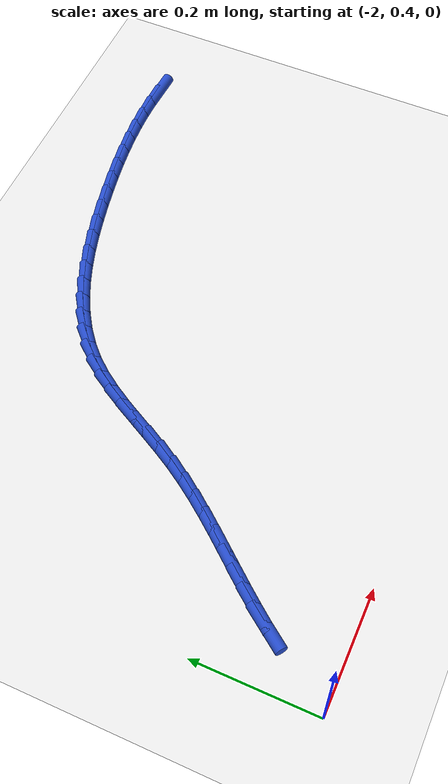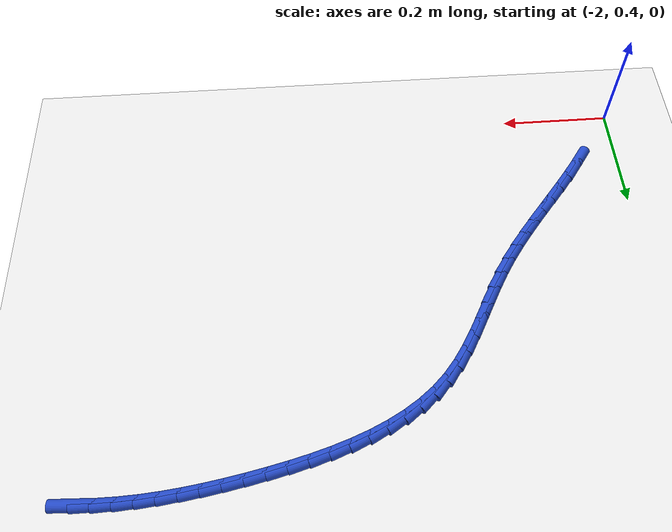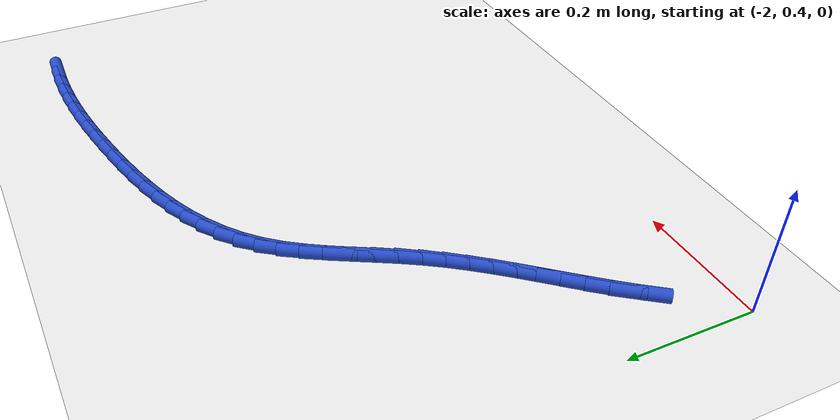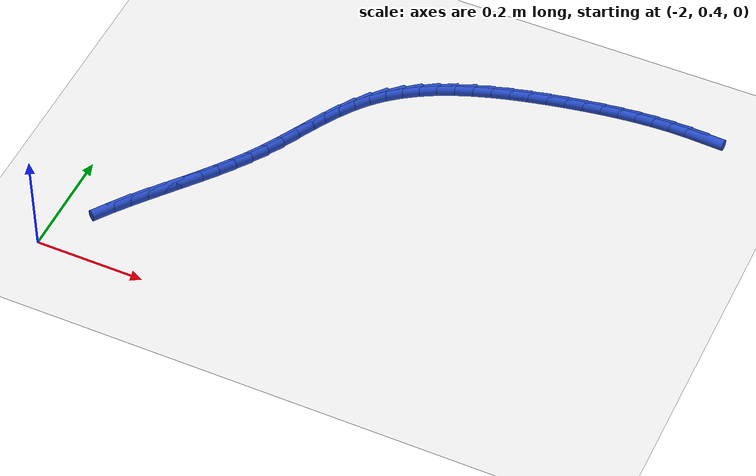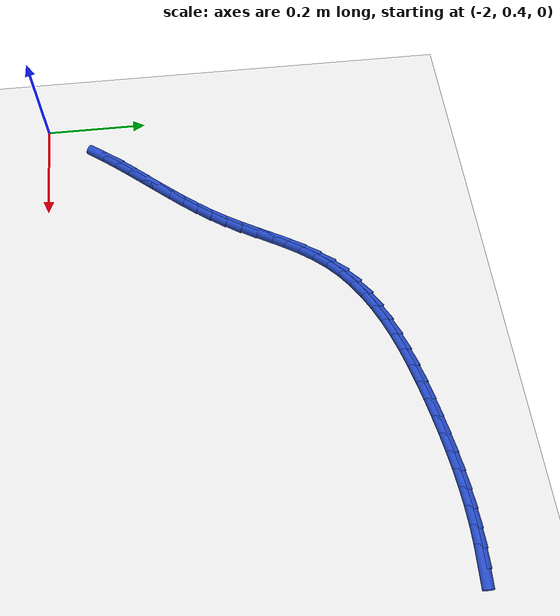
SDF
<sdf version="1.6">
 <world name="default">
  <model name="ground_plane">
   <static>1</static>
   <link name="link">
    <collision name="collision">
     <geometry><plane><normal>0 0 1</normal><size>100 100</size></plane></geometry>
     <surface><friction><ode><mu>100</mu><mu2>50</mu2></ode></friction></surface>
    </collision>
    <visual name="visual">
     <cast_shadows>0</cast_shadows>
     <geometry><plane><normal>0 0 1</normal><size>100 100</size></plane></geometry>
     <material>
      <script><uri>file://media/materials/scripts/gazebo.material</uri><name>Gazebo/WhiteGlow</name></script>
     </material>
    </visual>
   </link>
  </model>
  <model name="line">
   <link name="link_52">
    <pose>-1.0533404211157429 1.0933298246911303 0.01 0 1.57 -0.04409792855692649</pose>
    <collision name="collision">
     <geometry><cylinder><radius>0.01</radius><length>0.08</length></cylinder></geometry>
    </collision>
    <visual name="visual">
     <material>
      <script><name>Gazebo/Blue</name><uri>file://media/materials/scripts/gazebo.material</uri></script>
     </material>
     <geometry><cylinder><radius>0.01</radius><length>0.08</length></cylinder></geometry>
    </visual>
   </link>
   <link name="link_53">
    <pose>-1.0844659059388662 1.0947032845017493 0.01 0 1.57 -0.0008967322215749287</pose>
    <collision name="collision">
     <geometry><cylinder><radius>0.01</radius><length>0.08</length></cylinder></geometry>
    </collision>
    <visual name="visual">
     <material>
      <script><name>Gazebo/Blue</name><uri>file://media/materials/scripts/gazebo.material</uri></script>
     </material>
     <geometry><cylinder><radius>0.01</radius><length>0.08</length></cylinder></geometry>
    </visual>
   </link>
   <link name="link_54">
    <pose>-1.1156723066244603 1.0947312682942643 0.01 0 1.57 0.038955161904047395</pose>
    <collision name="collision">
     <geometry><cylinder><radius>0.01</radius><length>0.08</length></cylinder></geometry>
    </collision>
    <visual name="visual">
     <material>
      <script><name>Gazebo/Blue</name><uri>file://media/materials/scripts/gazebo.material</uri></script>
     </material>
     <geometry><cylinder><radius>0.01</radius><length>0.08</length></cylinder></geometry>
    </visual>
   </link>
   <link name="link_55">
    <pose>-1.1469783988741316 1.0935111171446366 0.01 0 1.57 0.07530611318332632</pose>
    <collision name="collision">
     <geometry><cylinder><radius>0.01</radius><length>0.08</length></cylinder></geometry>
    </collision>
    <visual name="visual">
     <material>
      <script><name>Gazebo/Blue</name><uri>file://media/materials/scripts/gazebo.material</uri></script>
     </material>
     <geometry><cylinder><radius>0.01</radius><length>0.08</length></cylinder></geometry>
    </visual>
   </link>
   <link name="link_56">
    <pose>-1.1784029583894877 1.0911401721288292 0.01 0 1.57 0.10807541034129929</pose>
    <collision name="collision">
     <geometry><cylinder><radius>0.01</radius><length>0.08</length></cylinder></geometry>
    </collision>
    <visual name="visual">
     <material>
      <script><name>Gazebo/Blue</name><uri>file://media/materials/scripts/gazebo.material</uri></script>
     </material>
     <geometry><cylinder><radius>0.01</radius><length>0.08</length></cylinder></geometry>
    </visual>
   </link>
   <link name="link_57">
    <pose>-1.209964760872134 1.087715774322804 0.01 0 1.57 0.13724059520402282</pose>
    <collision name="collision">
     <geometry><cylinder><radius>0.01</radius><length>0.08</length></cylinder></geometry>
    </collision>
    <visual name="visual">
     <material>
      <script><name>Gazebo/Blue</name><uri>file://media/materials/scripts/gazebo.material</uri></script>
     </material>
     <geometry><cylinder><radius>0.01</radius><length>0.08</length></cylinder></geometry>
    </visual>
   </link>
   <link name="link_58">
    <pose>-1.2416825820236777 1.0833352648025236 0.01 0 1.57 0.16282443819244294</pose>
    <collision name="collision">
     <geometry><cylinder><radius>0.01</radius><length>0.08</length></cylinder></geometry>
    </collision>
    <visual name="visual">
     <material>
      <script><name>Gazebo/Blue</name><uri>file://media/materials/scripts/gazebo.material</uri></script>
     </material>
     <geometry><cylinder><radius>0.01</radius><length>0.08</length></cylinder></geometry>
    </visual>
   </link>
   <link name="link_59">
    <pose>-1.2735751975457257 1.0780959846439502 0.01 0 1.57 0.18488274483353775</pose>
    <collision name="collision">
     <geometry><cylinder><radius>0.01</radius><length>0.08</length></cylinder></geometry>
    </collision>
    <visual name="visual">
     <material>
      <script><name>Gazebo/Blue</name><uri>file://media/materials/scripts/gazebo.material</uri></script>
     </material>
     <geometry><cylinder><radius>0.01</radius><length>0.08</length></cylinder></geometry>
    </visual>
   </link>
   <link name="link_60">
    <pose>-1.3056613831398851 1.0720952749230457 0.01 0 1.57 0.20367643807089145</pose>
    <collision name="collision">
     <geometry><cylinder><radius>0.01</radius><length>0.08</length></cylinder></geometry>
    </collision>
    <visual name="visual">
     <material>
      <script><name>Gazebo/Blue</name><uri>file://media/materials/scripts/gazebo.material</uri></script>
     </material>
     <geometry><cylinder><radius>0.01</radius><length>0.08</length></cylinder></geometry>
    </visual>
   </link>
   <link name="link_61">
    <pose>-1.3379547576884103 1.0654253879334639 0.01 0 1.57 0.2238463543688198</pose>
    <collision name="collision">
     <geometry><cylinder><radius>0.01</radius><length>0.08</length></cylinder></geometry>
    </collision>
    <visual name="visual">
     <material>
      <script><name>Gazebo/Blue</name><uri>file://media/materials/scripts/gazebo.material</uri></script>
     </material>
     <geometry><cylinder><radius>0.01</radius><length>0.08</length></cylinder></geometry>
    </visual>
   </link>
   <link name="link_62">
    <pose>-1.3703409669939894 1.0580522913156651 0.01 0 1.57 0.2503490077230713</pose>
    <collision name="collision">
     <geometry><cylinder><radius>0.01</radius><length>0.08</length></cylinder></geometry>
    </collision>
    <visual name="visual">
     <material>
      <script><name>Gazebo/Blue</name><uri>file://media/materials/scripts/gazebo.material</uri></script>
     </material>
     <geometry><cylinder><radius>0.01</radius><length>0.08</length></cylinder></geometry>
    </visual>
   </link>
   <link name="link_63">
    <pose>-1.402572253347309 1.0498103092714695 0.01 0 1.57 0.28382834283144087</pose>
    <collision name="collision">
     <geometry><cylinder><radius>0.01</radius><length>0.08</length></cylinder></geometry>
    </collision>
    <visual name="visual">
     <material>
      <script><name>Gazebo/Blue</name><uri>file://media/materials/scripts/gazebo.material</uri></script>
     </material>
     <geometry><cylinder><radius>0.01</radius><length>0.08</length></cylinder></geometry>
    </visual>
   </link>
   <link name="link_64">
    <pose>-1.4343946155451595 1.0405276048829992 0.01 0 1.57 0.3248893619595012</pose>
    <collision name="collision">
     <geometry><cylinder><radius>0.01</radius><length>0.08</length></cylinder></geometry>
    </collision>
    <visual name="visual">
     <material>
      <script><name>Gazebo/Blue</name><uri>file://media/materials/scripts/gazebo.material</uri></script>
     </material>
     <geometry><cylinder><radius>0.01</radius><length>0.08</length></cylinder></geometry>
    </visual>
   </link>
   <link name="link_65">
    <pose>-1.465554052384331 1.0300323412323766 0.01 0 1.57 0.37429562208140077</pose>
    <collision name="collision">
     <geometry><cylinder><radius>0.01</radius><length>0.08</length></cylinder></geometry>
    </collision>
    <visual name="visual">
     <material>
      <script><name>Gazebo/Blue</name><uri>file://media/materials/scripts/gazebo.material</uri></script>
     </material>
     <geometry><cylinder><radius>0.01</radius><length>0.08</length></cylinder></geometry>
    </visual>
   </link>
   <link name="link_66">
    <pose>-1.4957965626616143 1.0181526814017228 0.01 0 1.57 0.4329248731205369</pose>
    <collision name="collision">
     <geometry><cylinder><radius>0.01</radius><length>0.08</length></cylinder></geometry>
    </collision>
    <visual name="visual">
     <material>
      <script><name>Gazebo/Blue</name><uri>file://media/materials/scripts/gazebo.material</uri></script>
     </material>
     <geometry><cylinder><radius>0.01</radius><length>0.08</length></cylinder></geometry>
    </visual>
   </link>
   <link name="link_67">
    <pose>-1.5248681451737978 1.0047167884731598 0.01 0 1.57 0.5016845514277875</pose>
    <collision name="collision">
     <geometry><cylinder><radius>0.01</radius><length>0.08</length></cylinder></geometry>
    </collision>
    <visual name="visual">
     <material>
      <script><name>Gazebo/Blue</name><uri>file://media/materials/scripts/gazebo.material</uri></script>
     </material>
     <geometry><cylinder><radius>0.01</radius><length>0.08</length></cylinder></geometry>
    </visual>
   </link>
   <link name="link_68">
    <pose>-1.5525147987176735 0.9895528255288094 0.01 0 1.57 0.581363130732538</pose>
    <collision name="collision">
     <geometry><cylinder><radius>0.01</radius><length>0.08</length></cylinder></geometry>
    </collision>
    <visual name="visual">
     <material>
      <script><name>Gazebo/Blue</name><uri>file://media/materials/scripts/gazebo.material</uri></script>
     </material>
     <geometry><cylinder><radius>0.01</radius><length>0.08</length></cylinder></geometry>
    </visual>
   </link>
   <link name="link_69">
    <pose>-1.5784825220900314 0.9724889556507937 0.01 0 1.57 0.6723969665137532</pose>
    <collision name="collision">
     <geometry><cylinder><radius>0.01</radius><length>0.08</length></cylinder></geometry>
    </collision>
    <visual name="visual">
     <material>
      <script><name>Gazebo/Blue</name><uri>file://media/materials/scripts/gazebo.material</uri></script>
     </material>
     <geometry><cylinder><radius>0.01</radius><length>0.08</length></cylinder></geometry>
    </visual>
   </link>
   <link name="link_70">
    <pose>-1.6025173140876607 0.9533533419212343 0.01 0 1.57 0.7745516236602158</pose>
    <collision name="collision">
     <geometry><cylinder><radius>0.01</radius><length>0.08</length></cylinder></geometry>
    </collision>
    <visual name="visual">
     <material>
      <script><name>Gazebo/Blue</name><uri>file://media/materials/scripts/gazebo.material</uri></script>
     </material>
     <geometry><cylinder><radius>0.01</radius><length>0.08</length></cylinder></geometry>
    </visual>
   </link>
   <link name="link_71">
    <pose>-1.6243652925553298 0.9319742460211722 0.01 0 1.57 0.8793820463048583</pose>
    <collision name="collision">
     <geometry><cylinder><radius>0.01</radius><length>0.08</length></cylinder></geometry>
    </collision>
    <visual name="visual">
     <material>
      <script><name>Gazebo/Blue</name><uri>file://media/materials/scripts/gazebo.material</uri></script>
     </material>
     <geometry><cylinder><radius>0.01</radius><length>0.08</length></cylinder></geometry>
    </visual>
   </link>
   <link name="link_72">
    <pose>-1.6439432428092282 0.9083212812828589 0.01 0 1.57 0.9636982147836098</pose>
    <collision name="collision">
     <geometry><cylinder><radius>0.01</radius><length>0.08</length></cylinder></geometry>
    </collision>
    <visual name="visual">
     <material>
      <script><name>Gazebo/Blue</name><uri>file://media/materials/scripts/gazebo.material</uri></script>
     </material>
     <geometry><cylinder><radius>0.01</radius><length>0.08</length></cylinder></geometry>
    </visual>
   </link>
   <link name="link_73">
    <pose>-1.6616792132999214 0.8827875036995595 0.01 0 1.57 1.0235326451121516</pose>
    <collision name="collision">
     <geometry><cylinder><radius>0.01</radius><length>0.08</length></cylinder></geometry>
    </collision>
    <visual name="visual">
     <material>
      <script><name>Gazebo/Blue</name><uri>file://media/materials/scripts/gazebo.material</uri></script>
     </material>
     <geometry><cylinder><radius>0.01</radius><length>0.08</length></cylinder></geometry>
    </visual>
   </link>
   <link name="link_74">
    <pose>-1.6780965827305714 0.8558449244895914 0.01 0 1.57 1.0600431761222424</pose>
    <collision name="collision">
     <geometry><cylinder><radius>0.01</radius><length>0.08</length></cylinder></geometry>
    </collision>
    <visual name="visual">
     <material>
      <script><name>Gazebo/Blue</name><uri>file://media/materials/scripts/gazebo.material</uri></script>
     </material>
     <geometry><cylinder><radius>0.01</radius><length>0.08</length></cylinder></geometry>
    </visual>
   </link>
   <link name="link_75">
    <pose>-1.693718729804342 0.8279655548712703 0.01 0 1.57 1.0744493308386491</pose>
    <collision name="collision">
     <geometry><cylinder><radius>0.01</radius><length>0.08</length></cylinder></geometry>
    </collision>
    <visual name="visual">
     <material>
      <script><name>Gazebo/Blue</name><uri>file://media/materials/scripts/gazebo.material</uri></script>
     </material>
     <geometry><cylinder><radius>0.01</radius><length>0.08</length></cylinder></geometry>
    </visual>
   </link>
   <link name="link_76">
    <pose>-1.7090690332243956 0.7996214060629124 0.01 0 1.57 1.0675052510958196</pose>
    <collision name="collision">
     <geometry><cylinder><radius>0.01</radius><length>0.08</length></cylinder></geometry>
    </collision>
    <visual name="visual">
     <material>
      <script><name>Gazebo/Blue</name><uri>file://media/materials/scripts/gazebo.material</uri></script>
     </material>
     <geometry><cylinder><radius>0.01</radius><length>0.08</length></cylinder></geometry>
    </visual>
   </link>
   <link name="link_77">
    <pose>-1.7246708716938939 0.7712844892828344 0.01 0 1.57 1.0393420455279236</pose>
    <collision name="collision">
     <geometry><cylinder><radius>0.01</radius><length>0.08</length></cylinder></geometry>
    </collision>
    <visual name="visual">
     <material>
      <script><name>Gazebo/Blue</name><uri>file://media/materials/scripts/gazebo.material</uri></script>
     </material>
     <geometry><cylinder><radius>0.01</radius><length>0.08</length></cylinder></geometry>
    </visual>
   </link>
   <link name="link_78">
    <pose>-1.741047623916 0.7434268157493522 0.01 0 1.57 0.993661672398683</pose>
    <collision name="collision">
     <geometry><cylinder><radius>0.01</radius><length>0.08</length></cylinder></geometry>
    </collision>
    <visual name="visual">
     <material>
      <script><name>Gazebo/Blue</name><uri>file://media/materials/scripts/gazebo.material</uri></script>
     </material>
     <geometry><cylinder><radius>0.01</radius><length>0.08</length></cylinder></geometry>
    </visual>
   </link>
   <link name="link_79">
    <pose>-1.7586200967740708 0.7164371209318464 0.01 0 1.57 0.9506767074275583</pose>
    <collision name="collision">
     <geometry><cylinder><radius>0.01</radius><length>0.08</length></cylinder></geometry>
    </collision>
    <visual name="visual">
     <material>
      <script><name>Gazebo/Blue</name><uri>file://media/materials/scripts/gazebo.material</uri></script>
     </material>
     <geometry><cylinder><radius>0.01</radius><length>0.08</length></cylinder></geometry>
    </visual>
   </link>
   <link name="link_80">
    <pose>-1.7772942405837593 0.690286139855223 0.01 0 1.57 0.9169181919532771</pose>
    <collision name="collision">
     <geometry><cylinder><radius>0.01</radius><length>0.08</length></cylinder></geometry>
    </collision>
    <visual name="visual">
     <material>
      <script><name>Gazebo/Blue</name><uri>file://media/materials/scripts/gazebo.material</uri></script>
     </material>
     <geometry><cylinder><radius>0.01</radius><length>0.08</length></cylinder></geometry>
    </visual>
   </link>
   <link name="link_81">
    <pose>-1.7968148099929657 0.6648137364144525 0.01 0 1.57 0.8924375618304707</pose>
    <collision name="collision">
     <geometry><cylinder><radius>0.01</radius><length>0.08</length></cylinder></geometry>
    </collision>
    <visual name="visual">
     <material>
      <script><name>Gazebo/Blue</name><uri>file://media/materials/scripts/gazebo.material</uri></script>
     </material>
     <geometry><cylinder><radius>0.01</radius><length>0.08</length></cylinder></geometry>
    </visual>
   </link>
   <link name="link_82">
    <pose>-1.816926503953172 0.6398597292858401 0.01 0 1.57 0.8772343567361763</pose>
    <collision name="collision">
     <geometry><cylinder><radius>0.01</radius><length>0.08</length></cylinder></geometry>
    </collision>
    <visual name="visual">
     <material>
      <script><name>Gazebo/Blue</name><uri>file://media/materials/scripts/gazebo.material</uri></script>
     </material>
     <geometry><cylinder><radius>0.01</radius><length>0.08</length></cylinder></geometry>
    </visual>
   </link>
   <link name="link_83">
    <pose>-1.8373740214158611 0.6152639371456924 0.01 0 1.57 0.8713218593977275</pose>
    <collision name="collision">
     <geometry><cylinder><radius>0.01</radius><length>0.08</length></cylinder></geometry>
    </collision>
    <visual name="visual">
     <material>
      <script><name>Gazebo/Blue</name><uri>file://media/materials/scripts/gazebo.material</uri></script>
     </material>
     <geometry><cylinder><radius>0.01</radius><length>0.08</length></cylinder></geometry>
    </visual>
   </link>
   <link name="link_84">
    <pose>-1.8579020613325148 0.5908661786703144 0.01 0 1.57 0.8747671919768399</pose>
    <collision name="collision">
     <geometry><cylinder><radius>0.01</radius><length>0.08</length></cylinder></geometry>
    </collision>
    <visual name="visual">
     <material>
      <script><name>Gazebo/Blue</name><uri>file://media/materials/scripts/gazebo.material</uri></script>
     </material>
     <geometry><cylinder><radius>0.01</radius><length>0.08</length></cylinder></geometry>
    </visual>
   </link>
   <link name="link_85">
    <pose>-1.8782553226546177 0.566506272536012 0.01 0 1.57 0.8877085454889176</pose>
    <collision name="collision">
     <geometry><cylinder><radius>0.01</radius><length>0.08</length></cylinder></geometry>
    </collision>
    <visual name="visual">
     <material>
      <script><name>Gazebo/Blue</name><uri>file://media/materials/scripts/gazebo.material</uri></script>
     </material>
     <geometry><cylinder><radius>0.01</radius><length>0.08</length></cylinder></geometry>
    </visual>
   </link>
   <link name="link_86">
    <pose>-1.89817850433365 0.5420240374190913 0.01 0 1.57 0.9103489086072634</pose>
    <collision name="collision">
     <geometry><cylinder><radius>0.01</radius><length>0.08</length></cylinder></geometry>
    </collision>
    <visual name="visual">
     <material>
      <script><name>Gazebo/Blue</name><uri>file://media/materials/scripts/gazebo.material</uri></script>
     </material>
     <geometry><cylinder><radius>0.01</radius><length>0.08</length></cylinder></geometry>
    </visual>
   </link>
   <link name="link_87">
    <pose>-1.9174163053210969 0.5172592919958577 0.01 0 1.57 0.9429233886717237</pose>
    <collision name="collision">
     <geometry><cylinder><radius>0.01</radius><length>0.08</length></cylinder></geometry>
    </collision>
    <visual name="visual">
     <material>
      <script><name>Gazebo/Blue</name><uri>file://media/materials/scripts/gazebo.material</uri></script>
     </material>
     <geometry><cylinder><radius>0.01</radius><length>0.08</length></cylinder></geometry>
    </visual>
   </link>
  </model>
 </world>
</sdf>
